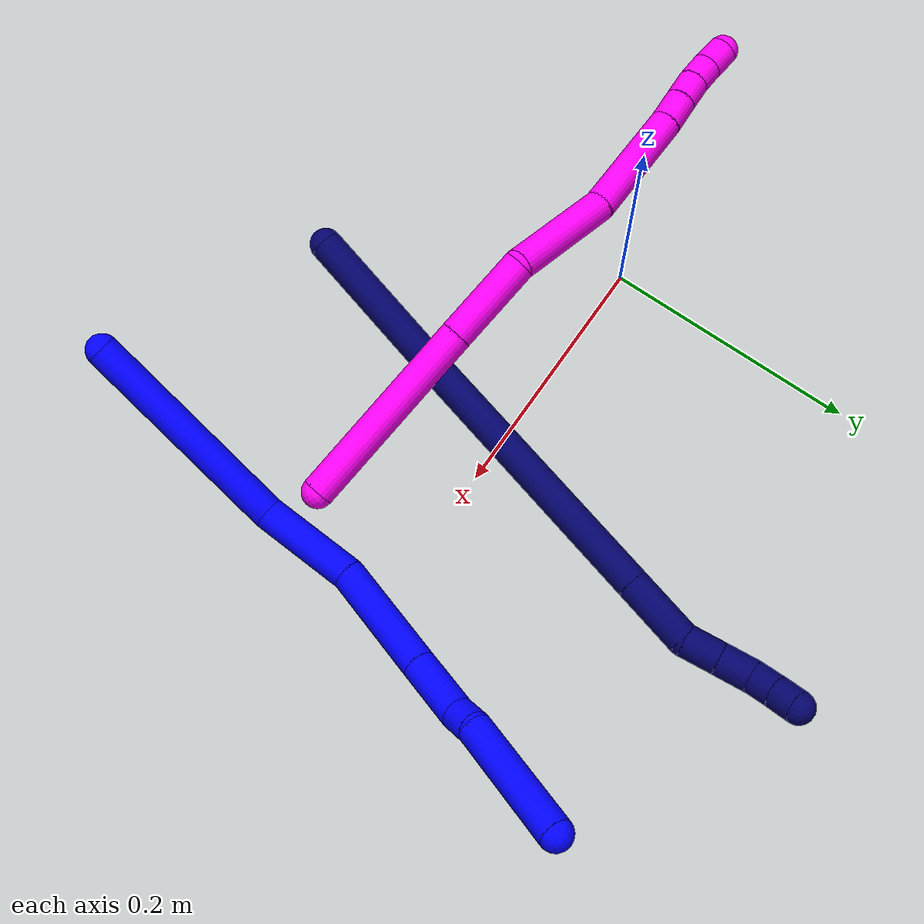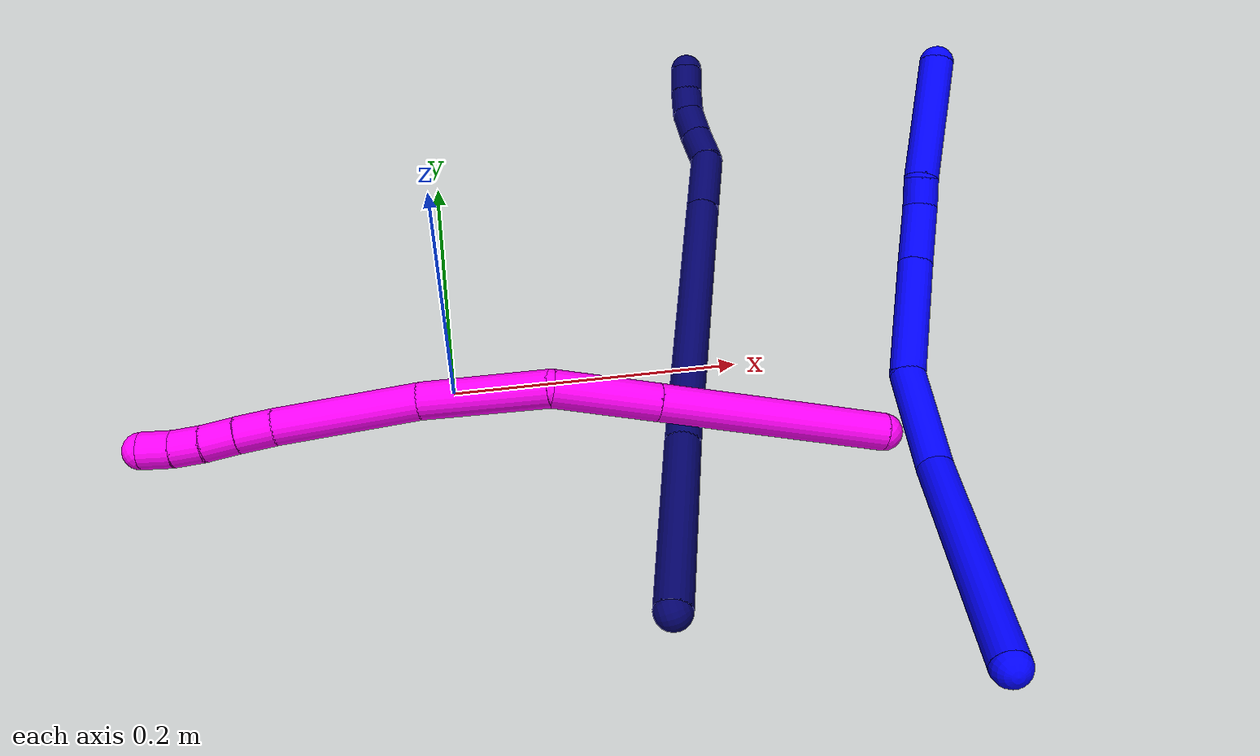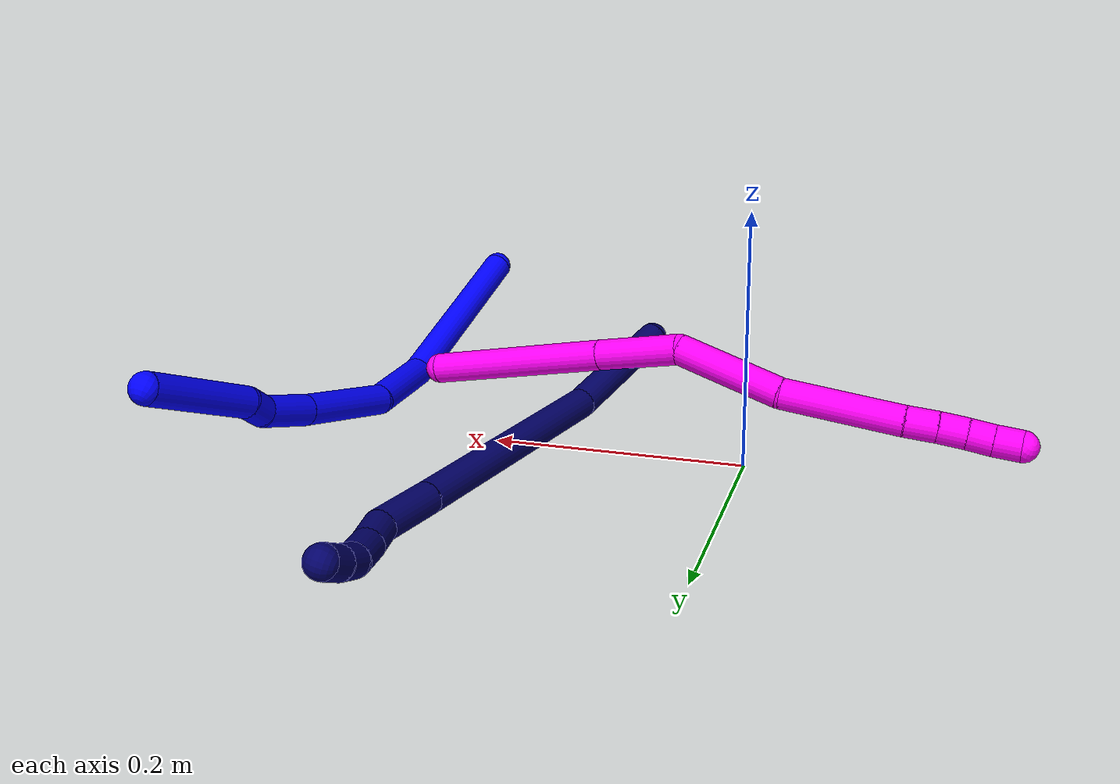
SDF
<sdf version="1.7">
 <world name="default">
  <model name="1">
   <static>0</static>
   <link name="1">
    <collision name="collision-cylinder-e_1_1_4">
     <pose>-0.00952 0.022188 0.081289 -0.266465 -0.112505 0.015094</pose>
     <geometry><cylinder><radius>0.0125</radius><length>0.169599</length></cylinder></geometry>
     <surface>
      <friction><ode><mu>1.16</mu><mu2>1.16</mu2><slip1>0</slip1><slip2>0</slip2></ode></friction>
      <contact><ode><kp>1e+06</kp><kd>1</kd><max_vel>0</max_vel><min_depth>0.001</min_depth></ode></contact>
     </surface>
    </collision>
    <visual name="visual-cylinder-e_1_1_4">
     <pose>-0.00952 0.022188 0.081289 -0.266465 -0.112505 0.015094</pose>
     <geometry><cylinder><radius>0.0125</radius><length>0.169599</length></cylinder></geometry>
     <material><ambient>0 0 1 1</ambient></material>
    </visual>
    <collision name="collision-cylinder-e_2_4_5">
     <pose>-0.023611 0.06646 0.193422 -0.621361 -0.119904 0.03854</pose>
     <geometry><cylinder><radius>0.0125</radius><length>0.076416</length></cylinder></geometry>
     <surface>
      <friction><ode><mu>1.16</mu><mu2>1.16</mu2><slip1>0</slip1><slip2>0</slip2></ode></friction>
      <contact><ode><kp>1e+06</kp><kd>1</kd><max_vel>0</max_vel><min_depth>0.001</min_depth></ode></contact>
     </surface>
    </collision>
    <visual name="visual-cylinder-e_2_4_5">
     <pose>-0.023611 0.06646 0.193422 -0.621361 -0.119904 0.03854</pose>
     <geometry><cylinder><radius>0.0125</radius><length>0.076416</length></cylinder></geometry>
     <material><ambient>0 0 1 1</ambient></material>
    </visual>
    <collision name="collision-cylinder-e_3_5_6">
     <pose>-0.045976 0.117167 0.253378 -0.77694 -0.41103 0.170218</pose>
     <geometry><cylinder><radius>0.0125</radius><length>0.089075</length></cylinder></geometry>
     <surface>
      <friction><ode><mu>1.16</mu><mu2>1.16</mu2><slip1>0</slip1><slip2>0</slip2></ode></friction>
      <contact><ode><kp>1e+06</kp><kd>1</kd><max_vel>0</max_vel><min_depth>0.001</min_depth></ode></contact>
     </surface>
    </collision>
    <visual name="visual-cylinder-e_3_5_6">
     <pose>-0.045976 0.117167 0.253378 -0.77694 -0.41103 0.170218</pose>
     <geometry><cylinder><radius>0.0125</radius><length>0.089075</length></cylinder></geometry>
     <material><ambient>0 0 1 1</ambient></material>
    </visual>
    <collision name="collision-cylinder-e_4_6_7">
     <pose>-0.073344 0.162064 0.296387 -0.86399 -0.420639 0.19621</pose>
     <geometry><cylinder><radius>0.0125</radius><length>0.046884</length></cylinder></geometry>
     <surface>
      <friction><ode><mu>1.16</mu><mu2>1.16</mu2><slip1>0</slip1><slip2>0</slip2></ode></friction>
      <contact><ode><kp>1e+06</kp><kd>1</kd><max_vel>0</max_vel><min_depth>0.001</min_depth></ode></contact>
     </surface>
    </collision>
    <visual name="visual-cylinder-e_4_6_7">
     <pose>-0.073344 0.162064 0.296387 -0.86399 -0.420639 0.19621</pose>
     <geometry><cylinder><radius>0.0125</radius><length>0.046884</length></cylinder></geometry>
     <material><ambient>0 0 1 1</ambient></material>
    </visual>
    <collision name="collision-cylinder-e_5_7_8">
     <pose>-0.086437 0.18806 0.313279 -1.27197 -0.333157 0.247014</pose>
     <geometry><cylinder><radius>0.0125</radius><length>0.021535</length></cylinder></geometry>
     <surface>
      <friction><ode><mu>1.16</mu><mu2>1.16</mu2><slip1>0</slip1><slip2>0</slip2></ode></friction>
      <contact><ode><kp>1e+06</kp><kd>1</kd><max_vel>0</max_vel><min_depth>0.001</min_depth></ode></contact>
     </surface>
    </collision>
    <visual name="visual-cylinder-e_5_7_8">
     <pose>-0.086437 0.18806 0.313279 -1.27197 -0.333157 0.247014</pose>
     <geometry><cylinder><radius>0.0125</radius><length>0.021535</length></cylinder></geometry>
     <material><ambient>0 0 1 1</ambient></material>
    </visual>
    <collision name="collision-cylinder-e_6_8_2">
     <pose>-0.111142 0.233928 0.340205 -0.985973 -0.45456 0.24723</pose>
     <geometry><cylinder><radius>0.0125</radius><length>0.096492</length></cylinder></geometry>
     <surface>
      <friction><ode><mu>1.16</mu><mu2>1.16</mu2><slip1>0</slip1><slip2>0</slip2></ode></friction>
      <contact><ode><kp>1e+06</kp><kd>1</kd><max_vel>0</max_vel><min_depth>0.001</min_depth></ode></contact>
     </surface>
    </collision>
    <visual name="visual-cylinder-e_6_8_2">
     <pose>-0.111142 0.233928 0.340205 -0.985973 -0.45456 0.24723</pose>
     <geometry><cylinder><radius>0.0125</radius><length>0.096492</length></cylinder></geometry>
     <material><ambient>0 0 1 1</ambient></material>
    </visual>
    <collision name="collision-sphere-2">
     <pose>-0.132325 0.270071 0.364134 0 -0 0</pose>
     <geometry><sphere><radius>0.0125</radius></sphere></geometry>
     <surface>
      <friction><ode><mu>1.16</mu><mu2>1.16</mu2><slip1>0</slip1><slip2>0</slip2></ode></friction>
      <contact><ode><kp>1e+06</kp><kd>1</kd><max_vel>0</max_vel><min_depth>0.001</min_depth></ode></contact>
     </surface>
    </collision>
    <visual name="visual-sphere-2">
     <pose>-0.132325 0.270071 0.364134 0 -0 0</pose>
     <geometry><sphere><radius>0.0125</radius></sphere></geometry>
     <material><ambient>0 0 1 1</ambient></material>
    </visual>
    <collision name="collision-sphere-4">
     <pose>-0.01904 0.044377 0.162579 0 -0 0</pose>
     <geometry><sphere><radius>0.0125</radius></sphere></geometry>
     <surface>
      <friction><ode><mu>1.16</mu><mu2>1.16</mu2><slip1>0</slip1><slip2>0</slip2></ode></friction>
      <contact><ode><kp>1e+06</kp><kd>1</kd><max_vel>0</max_vel><min_depth>0.001</min_depth></ode></contact>
     </surface>
    </collision>
    <visual name="visual-sphere-4">
     <pose>-0.01904 0.044377 0.162579 0 -0 0</pose>
     <geometry><sphere><radius>0.0125</radius></sphere></geometry>
     <material><ambient>0 0 1 1</ambient></material>
    </visual>
    <collision name="collision-sphere-1">
     <geometry><sphere><radius>0.0125</radius></sphere></geometry>
     <surface>
      <friction><ode><mu>1.16</mu><mu2>1.16</mu2><slip1>0</slip1><slip2>0</slip2></ode></friction>
      <contact><ode><kp>1e+06</kp><kd>1</kd><max_vel>0</max_vel><min_depth>0.001</min_depth></ode></contact>
     </surface>
    </collision>
    <visual name="visual-sphere-1">
     <geometry><sphere><radius>0.0125</radius></sphere></geometry>
     <material><ambient>0 0 1 1</ambient></material>
    </visual>
    <collision name="collision-sphere-8">
     <pose>-0.089959 0.197785 0.316275 0 -0 0</pose>
     <geometry><sphere><radius>0.0125</radius></sphere></geometry>
     <surface>
      <friction><ode><mu>1.16</mu><mu2>1.16</mu2><slip1>0</slip1><slip2>0</slip2></ode></friction>
      <contact><ode><kp>1e+06</kp><kd>1</kd><max_vel>0</max_vel><min_depth>0.001</min_depth></ode></contact>
     </surface>
    </collision>
    <visual name="visual-sphere-8">
     <pose>-0.089959 0.197785 0.316275 0 -0 0</pose>
     <geometry><sphere><radius>0.0125</radius></sphere></geometry>
     <material><ambient>0 0 1 1</ambient></material>
    </visual>
    <collision name="collision-sphere-5">
     <pose>-0.028181 0.088542 0.224265 0 -0 0</pose>
     <geometry><sphere><radius>0.0125</radius></sphere></geometry>
     <surface>
      <friction><ode><mu>1.16</mu><mu2>1.16</mu2><slip1>0</slip1><slip2>0</slip2></ode></friction>
      <contact><ode><kp>1e+06</kp><kd>1</kd><max_vel>0</max_vel><min_depth>0.001</min_depth></ode></contact>
     </surface>
    </collision>
    <visual name="visual-sphere-5">
     <pose>-0.028181 0.088542 0.224265 0 -0 0</pose>
     <geometry><sphere><radius>0.0125</radius></sphere></geometry>
     <material><ambient>0 0 1 1</ambient></material>
    </visual>
    <collision name="collision-sphere-6">
     <pose>-0.063771 0.145791 0.282491 0 -0 0</pose>
     <geometry><sphere><radius>0.0125</radius></sphere></geometry>
     <surface>
      <friction><ode><mu>1.16</mu><mu2>1.16</mu2><slip1>0</slip1><slip2>0</slip2></ode></friction>
      <contact><ode><kp>1e+06</kp><kd>1</kd><max_vel>0</max_vel><min_depth>0.001</min_depth></ode></contact>
     </surface>
    </collision>
    <visual name="visual-sphere-6">
     <pose>-0.063771 0.145791 0.282491 0 -0 0</pose>
     <geometry><sphere><radius>0.0125</radius></sphere></geometry>
     <material><ambient>0 0 1 1</ambient></material>
    </visual>
    <collision name="collision-sphere-7">
     <pose>-0.082916 0.178336 0.310284 0 -0 0</pose>
     <geometry><sphere><radius>0.0125</radius></sphere></geometry>
     <surface>
      <friction><ode><mu>1.16</mu><mu2>1.16</mu2><slip1>0</slip1><slip2>0</slip2></ode></friction>
      <contact><ode><kp>1e+06</kp><kd>1</kd><max_vel>0</max_vel><min_depth>0.001</min_depth></ode></contact>
     </surface>
    </collision>
    <visual name="visual-sphere-7">
     <pose>-0.082916 0.178336 0.310284 0 -0 0</pose>
     <geometry><sphere><radius>0.0125</radius></sphere></geometry>
     <material><ambient>0 0 1 1</ambient></material>
    </visual>
    <inertial>
     <pose>-0.047077 0.106997 0.209212 0 -0 0</pose>
     <mass>0.5</mass>
     <inertia>
      <ixx>0.000613</ixx>
      <ixy>0</ixy>
      <ixz>0</ixz>
      <iyy>0.000593</iyy>
      <iyz>0</iyz>
      <izz>-9.5e-05</izz>
     </inertia>
    </inertial>
   </link>
   <pose>0.290724 -0.267594 0.067416 2.21096 0.218971 -3.07177</pose>
  </model>
  <model name="7">
   <static>0</static>
   <link name="7">
    <collision name="collision-cylinder-e_1_1_4">
     <pose>-0.063172 -0.012827 0.016865 0.650252 -1.24717 -0.475776</pose>
     <geometry><cylinder><radius>0.0125</radius><length>0.133261</length></cylinder></geometry>
     <surface>
      <friction><ode><mu>1.16</mu><mu2>1.16</mu2><slip1>0</slip1><slip2>0</slip2></ode></friction>
      <contact><ode><kp>1e+06</kp><kd>1</kd><max_vel>0</max_vel><min_depth>0.001</min_depth></ode></contact>
     </surface>
    </collision>
    <visual name="visual-cylinder-e_1_1_4">
     <pose>-0.063172 -0.012827 0.016865 0.650252 -1.24717 -0.475776</pose>
     <geometry><cylinder><radius>0.0125</radius><length>0.133261</length></cylinder></geometry>
     <material><ambient>0.003922 0 0.403922 1</ambient></material>
    </visual>
    <collision name="collision-cylinder-e_2_4_5">
     <pose>-0.223278 -0.060158 0.067779 0.792019 -1.10709 -0.505702</pose>
     <geometry><cylinder><radius>0.0125</radius><length>0.21676</length></cylinder></geometry>
     <surface>
      <friction><ode><mu>1.16</mu><mu2>1.16</mu2><slip1>0</slip1><slip2>0</slip2></ode></friction>
      <contact><ode><kp>1e+06</kp><kd>1</kd><max_vel>0</max_vel><min_depth>0.001</min_depth></ode></contact>
     </surface>
    </collision>
    <visual name="visual-cylinder-e_2_4_5">
     <pose>-0.223278 -0.060158 0.067779 0.792019 -1.10709 -0.505702</pose>
     <geometry><cylinder><radius>0.0125</radius><length>0.21676</length></cylinder></geometry>
     <material><ambient>0.003922 0 0.403922 1</ambient></material>
    </visual>
    <collision name="collision-cylinder-e_3_5_6">
     <pose>-0.344503 -0.103604 0.110553 0.797757 -1.09569 -0.503411</pose>
     <geometry><cylinder><radius>0.0125</radius><length>0.054628</length></cylinder></geometry>
     <surface>
      <friction><ode><mu>1.16</mu><mu2>1.16</mu2><slip1>0</slip1><slip2>0</slip2></ode></friction>
      <contact><ode><kp>1e+06</kp><kd>1</kd><max_vel>0</max_vel><min_depth>0.001</min_depth></ode></contact>
     </surface>
    </collision>
    <visual name="visual-cylinder-e_3_5_6">
     <pose>-0.344503 -0.103604 0.110553 0.797757 -1.09569 -0.503411</pose>
     <geometry><cylinder><radius>0.0125</radius><length>0.054628</length></cylinder></geometry>
     <material><ambient>0.003922 0 0.403922 1</ambient></material>
    </visual>
    <collision name="collision-cylinder-e_4_6_7">
     <pose>-0.381541 -0.118492 0.118929 1.62938 -1.13382 -1.18756</pose>
     <geometry><cylinder><radius>0.0125</radius><length>0.028143</length></cylinder></geometry>
     <surface>
      <friction><ode><mu>1.16</mu><mu2>1.16</mu2><slip1>0</slip1><slip2>0</slip2></ode></friction>
      <contact><ode><kp>1e+06</kp><kd>1</kd><max_vel>0</max_vel><min_depth>0.001</min_depth></ode></contact>
     </surface>
    </collision>
    <visual name="visual-cylinder-e_4_6_7">
     <pose>-0.381541 -0.118492 0.118929 1.62938 -1.13382 -1.18756</pose>
     <geometry><cylinder><radius>0.0125</radius><length>0.028143</length></cylinder></geometry>
     <material><ambient>0.003922 0 0.403922 1</ambient></material>
    </visual>
    <collision name="collision-cylinder-e_5_7_8">
     <pose>-0.405992 -0.131061 0.118893 1.52365 -1.05525 -1.0147</pose>
     <geometry><cylinder><radius>0.0125</radius><length>0.026901</length></cylinder></geometry>
     <surface>
      <friction><ode><mu>1.16</mu><mu2>1.16</mu2><slip1>0</slip1><slip2>0</slip2></ode></friction>
      <contact><ode><kp>1e+06</kp><kd>1</kd><max_vel>0</max_vel><min_depth>0.001</min_depth></ode></contact>
     </surface>
    </collision>
    <visual name="visual-cylinder-e_5_7_8">
     <pose>-0.405992 -0.131061 0.118893 1.52365 -1.05525 -1.0147</pose>
     <geometry><cylinder><radius>0.0125</radius><length>0.026901</length></cylinder></geometry>
     <material><ambient>0.003922 0 0.403922 1</ambient></material>
    </visual>
    <collision name="collision-cylinder-e_6_8_9">
     <pose>-0.424891 -0.144298 0.121636 1.21859 -0.796047 -0.570837</pose>
     <geometry><cylinder><radius>0.0125</radius><length>0.020143</length></cylinder></geometry>
     <surface>
      <friction><ode><mu>1.16</mu><mu2>1.16</mu2><slip1>0</slip1><slip2>0</slip2></ode></friction>
      <contact><ode><kp>1e+06</kp><kd>1</kd><max_vel>0</max_vel><min_depth>0.001</min_depth></ode></contact>
     </surface>
    </collision>
    <visual name="visual-cylinder-e_6_8_9">
     <pose>-0.424891 -0.144298 0.121636 1.21859 -0.796047 -0.570837</pose>
     <geometry><cylinder><radius>0.0125</radius><length>0.020143</length></cylinder></geometry>
     <material><ambient>0.003922 0 0.403922 1</ambient></material>
    </visual>
    <collision name="collision-cylinder-e_7_9_2">
     <pose>-0.438291 -0.158173 0.127296 1.15242 -0.662644 -0.439811</pose>
     <geometry><cylinder><radius>0.0125</radius><length>0.020164</length></cylinder></geometry>
     <surface>
      <friction><ode><mu>1.16</mu><mu2>1.16</mu2><slip1>0</slip1><slip2>0</slip2></ode></friction>
      <contact><ode><kp>1e+06</kp><kd>1</kd><max_vel>0</max_vel><min_depth>0.001</min_depth></ode></contact>
     </surface>
    </collision>
    <visual name="visual-cylinder-e_7_9_2">
     <pose>-0.438291 -0.158173 0.127296 1.15242 -0.662644 -0.439811</pose>
     <geometry><cylinder><radius>0.0125</radius><length>0.020164</length></cylinder></geometry>
     <material><ambient>0.003922 0 0.403922 1</ambient></material>
    </visual>
    <collision name="collision-sphere-2">
     <pose>-0.444493 -0.165436 0.130525 0 -0 0</pose>
     <geometry><sphere><radius>0.0125</radius></sphere></geometry>
     <surface>
      <friction><ode><mu>1.16</mu><mu2>1.16</mu2><slip1>0</slip1><slip2>0</slip2></ode></friction>
      <contact><ode><kp>1e+06</kp><kd>1</kd><max_vel>0</max_vel><min_depth>0.001</min_depth></ode></contact>
     </surface>
    </collision>
    <visual name="visual-sphere-2">
     <pose>-0.444493 -0.165436 0.130525 0 -0 0</pose>
     <geometry><sphere><radius>0.0125</radius></sphere></geometry>
     <material><ambient>0.003922 0 0.403922 1</ambient></material>
    </visual>
    <collision name="collision-sphere-9">
     <pose>-0.432089 -0.150911 0.124067 0 -0 0</pose>
     <geometry><sphere><radius>0.0125</radius></sphere></geometry>
     <surface>
      <friction><ode><mu>1.16</mu><mu2>1.16</mu2><slip1>0</slip1><slip2>0</slip2></ode></friction>
      <contact><ode><kp>1e+06</kp><kd>1</kd><max_vel>0</max_vel><min_depth>0.001</min_depth></ode></contact>
     </surface>
    </collision>
    <visual name="visual-sphere-9">
     <pose>-0.432089 -0.150911 0.124067 0 -0 0</pose>
     <geometry><sphere><radius>0.0125</radius></sphere></geometry>
     <material><ambient>0.003922 0 0.403922 1</ambient></material>
    </visual>
    <collision name="collision-sphere-4">
     <pose>-0.126343 -0.025655 0.03373 0 -0 0</pose>
     <geometry><sphere><radius>0.0125</radius></sphere></geometry>
     <surface>
      <friction><ode><mu>1.16</mu><mu2>1.16</mu2><slip1>0</slip1><slip2>0</slip2></ode></friction>
      <contact><ode><kp>1e+06</kp><kd>1</kd><max_vel>0</max_vel><min_depth>0.001</min_depth></ode></contact>
     </surface>
    </collision>
    <visual name="visual-sphere-4">
     <pose>-0.126343 -0.025655 0.03373 0 -0 0</pose>
     <geometry><sphere><radius>0.0125</radius></sphere></geometry>
     <material><ambient>0.003922 0 0.403922 1</ambient></material>
    </visual>
    <collision name="collision-sphere-1">
     <geometry><sphere><radius>0.0125</radius></sphere></geometry>
     <surface>
      <friction><ode><mu>1.16</mu><mu2>1.16</mu2><slip1>0</slip1><slip2>0</slip2></ode></friction>
      <contact><ode><kp>1e+06</kp><kd>1</kd><max_vel>0</max_vel><min_depth>0.001</min_depth></ode></contact>
     </surface>
    </collision>
    <visual name="visual-sphere-1">
     <geometry><sphere><radius>0.0125</radius></sphere></geometry>
     <material><ambient>0.003922 0 0.403922 1</ambient></material>
    </visual>
    <collision name="collision-sphere-8">
     <pose>-0.417694 -0.137685 0.119206 0 -0 0</pose>
     <geometry><sphere><radius>0.0125</radius></sphere></geometry>
     <surface>
      <friction><ode><mu>1.16</mu><mu2>1.16</mu2><slip1>0</slip1><slip2>0</slip2></ode></friction>
      <contact><ode><kp>1e+06</kp><kd>1</kd><max_vel>0</max_vel><min_depth>0.001</min_depth></ode></contact>
     </surface>
    </collision>
    <visual name="visual-sphere-8">
     <pose>-0.417694 -0.137685 0.119206 0 -0 0</pose>
     <geometry><sphere><radius>0.0125</radius></sphere></geometry>
     <material><ambient>0.003922 0 0.403922 1</ambient></material>
    </visual>
    <collision name="collision-sphere-5">
     <pose>-0.320214 -0.094661 0.101828 0 -0 0</pose>
     <geometry><sphere><radius>0.0125</radius></sphere></geometry>
     <surface>
      <friction><ode><mu>1.16</mu><mu2>1.16</mu2><slip1>0</slip1><slip2>0</slip2></ode></friction>
      <contact><ode><kp>1e+06</kp><kd>1</kd><max_vel>0</max_vel><min_depth>0.001</min_depth></ode></contact>
     </surface>
    </collision>
    <visual name="visual-sphere-5">
     <pose>-0.320214 -0.094661 0.101828 0 -0 0</pose>
     <geometry><sphere><radius>0.0125</radius></sphere></geometry>
     <material><ambient>0.003922 0 0.403922 1</ambient></material>
    </visual>
    <collision name="collision-sphere-6">
     <pose>-0.368792 -0.112548 0.119278 0 -0 0</pose>
     <geometry><sphere><radius>0.0125</radius></sphere></geometry>
     <surface>
      <friction><ode><mu>1.16</mu><mu2>1.16</mu2><slip1>0</slip1><slip2>0</slip2></ode></friction>
      <contact><ode><kp>1e+06</kp><kd>1</kd><max_vel>0</max_vel><min_depth>0.001</min_depth></ode></contact>
     </surface>
    </collision>
    <visual name="visual-sphere-6">
     <pose>-0.368792 -0.112548 0.119278 0 -0 0</pose>
     <geometry><sphere><radius>0.0125</radius></sphere></geometry>
     <material><ambient>0.003922 0 0.403922 1</ambient></material>
    </visual>
    <collision name="collision-sphere-7">
     <pose>-0.39429 -0.124437 0.118581 0 -0 0</pose>
     <geometry><sphere><radius>0.0125</radius></sphere></geometry>
     <surface>
      <friction><ode><mu>1.16</mu><mu2>1.16</mu2><slip1>0</slip1><slip2>0</slip2></ode></friction>
      <contact><ode><kp>1e+06</kp><kd>1</kd><max_vel>0</max_vel><min_depth>0.001</min_depth></ode></contact>
     </surface>
    </collision>
    <visual name="visual-sphere-7">
     <pose>-0.39429 -0.124437 0.118581 0 -0 0</pose>
     <geometry><sphere><radius>0.0125</radius></sphere></geometry>
     <material><ambient>0.003922 0 0.403922 1</ambient></material>
    </visual>
    <inertial>
     <pose>-0.229382 -0.066731 0.069082 0 -0 0</pose>
     <mass>0.5</mass>
     <inertia>
      <ixx>0.000145</ixx>
      <ixy>0</ixy>
      <ixz>0</ixz>
      <iyy>0.000773</iyy>
      <iyz>0</iyz>
      <izz>0.001311</izz>
     </inertia>
    </inertial>
   </link>
   <pose>0.118826 -0.196451 0.032636 -1.25352 -0.424956 -1.62173</pose>
  </model>
  <model name="10">
   <static>0</static>
   <link name="10">
    <collision name="collision-cylinder-e_1_1_4">
     <pose>-0.049077 0.012316 0.057891 -0.209616 -0.692289 0.075843</pose>
     <geometry><cylinder><radius>0.0125</radius><length>0.153774</length></cylinder></geometry>
     <surface>
      <friction><ode><mu>1.16</mu><mu2>1.16</mu2><slip1>0</slip1><slip2>0</slip2></ode></friction>
      <contact><ode><kp>1e+06</kp><kd>1</kd><max_vel>0</max_vel><min_depth>0.001</min_depth></ode></contact>
     </surface>
    </collision>
    <visual name="visual-cylinder-e_1_1_4">
     <pose>-0.049077 0.012316 0.057891 -0.209616 -0.692289 0.075843</pose>
     <geometry><cylinder><radius>0.0125</radius><length>0.153774</length></cylinder></geometry>
     <material><ambient>1 0 0.964706 1</ambient></material>
    </visual>
    <collision name="collision-cylinder-e_2_4_5">
     <pose>-0.120501 0.030598 0.142103 -0.222918 -0.691593 0.080602</pose>
     <geometry><cylinder><radius>0.0125</radius><length>0.07008</length></cylinder></geometry>
     <surface>
      <friction><ode><mu>1.16</mu><mu2>1.16</mu2><slip1>0</slip1><slip2>0</slip2></ode></friction>
      <contact><ode><kp>1e+06</kp><kd>1</kd><max_vel>0</max_vel><min_depth>0.001</min_depth></ode></contact>
     </surface>
    </collision>
    <visual name="visual-cylinder-e_2_4_5">
     <pose>-0.120501 0.030598 0.142103 -0.222918 -0.691593 0.080602</pose>
     <geometry><cylinder><radius>0.0125</radius><length>0.07008</length></cylinder></geometry>
     <material><ambient>1 0 0.964706 1</ambient></material>
    </visual>
    <collision name="collision-cylinder-e_3_5_6">
     <pose>-0.173516 0.060797 0.189911 -0.845363 -0.758152 0.35458</pose>
     <geometry><cylinder><radius>0.0125</radius><length>0.089206</length></cylinder></geometry>
     <surface>
      <friction><ode><mu>1.16</mu><mu2>1.16</mu2><slip1>0</slip1><slip2>0</slip2></ode></friction>
      <contact><ode><kp>1e+06</kp><kd>1</kd><max_vel>0</max_vel><min_depth>0.001</min_depth></ode></contact>
     </surface>
    </collision>
    <visual name="visual-cylinder-e_3_5_6">
     <pose>-0.173516 0.060797 0.189911 -0.845363 -0.758152 0.35458</pose>
     <geometry><cylinder><radius>0.0125</radius><length>0.089206</length></cylinder></geometry>
     <material><ambient>1 0 0.964706 1</ambient></material>
    </visual>
    <collision name="collision-cylinder-e_4_6_7">
     <pose>-0.243084 0.101833 0.234861 -0.621511 -0.932503 0.320483</pose>
     <geometry><cylinder><radius>0.0125</radius><length>0.096873</length></cylinder></geometry>
     <surface>
      <friction><ode><mu>1.16</mu><mu2>1.16</mu2><slip1>0</slip1><slip2>0</slip2></ode></friction>
      <contact><ode><kp>1e+06</kp><kd>1</kd><max_vel>0</max_vel><min_depth>0.001</min_depth></ode></contact>
     </surface>
    </collision>
    <visual name="visual-cylinder-e_4_6_7">
     <pose>-0.243084 0.101833 0.234861 -0.621511 -0.932503 0.320483</pose>
     <geometry><cylinder><radius>0.0125</radius><length>0.096873</length></cylinder></geometry>
     <material><ambient>1 0 0.964706 1</ambient></material>
    </visual>
    <collision name="collision-cylinder-e_5_7_8">
     <pose>-0.292515 0.122313 0.264124 -0.564917 -0.992936 0.311884</pose>
     <geometry><cylinder><radius>0.0125</radius><length>0.025145</length></cylinder></geometry>
     <surface>
      <friction><ode><mu>1.16</mu><mu2>1.16</mu2><slip1>0</slip1><slip2>0</slip2></ode></friction>
      <contact><ode><kp>1e+06</kp><kd>1</kd><max_vel>0</max_vel><min_depth>0.001</min_depth></ode></contact>
     </surface>
    </collision>
    <visual name="visual-cylinder-e_5_7_8">
     <pose>-0.292515 0.122313 0.264124 -0.564917 -0.992936 0.311884</pose>
     <geometry><cylinder><radius>0.0125</radius><length>0.025145</length></cylinder></geometry>
     <material><ambient>1 0 0.964706 1</ambient></material>
    </visual>
    <collision name="collision-cylinder-e_6_8_9">
     <pose>-0.312671 0.129636 0.274814 -0.640825 -1.00596 0.361174</pose>
     <geometry><cylinder><radius>0.0125</radius><length>0.022788</length></cylinder></geometry>
     <surface>
      <friction><ode><mu>1.16</mu><mu2>1.16</mu2><slip1>0</slip1><slip2>0</slip2></ode></friction>
      <contact><ode><kp>1e+06</kp><kd>1</kd><max_vel>0</max_vel><min_depth>0.001</min_depth></ode></contact>
     </surface>
    </collision>
    <visual name="visual-cylinder-e_6_8_9">
     <pose>-0.312671 0.129636 0.274814 -0.640825 -1.00596 0.361174</pose>
     <geometry><cylinder><radius>0.0125</radius><length>0.022788</length></cylinder></geometry>
     <material><ambient>1 0 0.964706 1</ambient></material>
    </visual>
    <collision name="collision-cylinder-e_7_9_10">
     <pose>-0.330455 0.137183 0.284628 -0.669868 -0.914675 0.339281</pose>
     <geometry><cylinder><radius>0.0125</radius><length>0.020597</length></cylinder></geometry>
     <surface>
      <friction><ode><mu>1.16</mu><mu2>1.16</mu2><slip1>0</slip1><slip2>0</slip2></ode></friction>
      <contact><ode><kp>1e+06</kp><kd>1</kd><max_vel>0</max_vel><min_depth>0.001</min_depth></ode></contact>
     </surface>
    </collision>
    <visual name="visual-cylinder-e_7_9_10">
     <pose>-0.330455 0.137183 0.284628 -0.669868 -0.914675 0.339281</pose>
     <geometry><cylinder><radius>0.0125</radius><length>0.020597</length></cylinder></geometry>
     <material><ambient>1 0 0.964706 1</ambient></material>
    </visual>
    <collision name="collision-cylinder-e_8_10_2">
     <pose>-0.346485 0.144959 0.295799 -0.555382 -0.819477 0.246358</pose>
     <geometry><cylinder><radius>0.0125</radius><length>0.021539</length></cylinder></geometry>
     <surface>
      <friction><ode><mu>1.16</mu><mu2>1.16</mu2><slip1>0</slip1><slip2>0</slip2></ode></friction>
      <contact><ode><kp>1e+06</kp><kd>1</kd><max_vel>0</max_vel><min_depth>0.001</min_depth></ode></contact>
     </surface>
    </collision>
    <visual name="visual-cylinder-e_8_10_2">
     <pose>-0.346485 0.144959 0.295799 -0.555382 -0.819477 0.246358</pose>
     <geometry><cylinder><radius>0.0125</radius><length>0.021539</length></cylinder></geometry>
     <material><ambient>1 0 0.964706 1</ambient></material>
    </visual>
    <collision name="collision-sphere-2">
     <pose>-0.354355 0.148836 0.302045 0 -0 0</pose>
     <geometry><sphere><radius>0.0125</radius></sphere></geometry>
     <surface>
      <friction><ode><mu>1.16</mu><mu2>1.16</mu2><slip1>0</slip1><slip2>0</slip2></ode></friction>
      <contact><ode><kp>1e+06</kp><kd>1</kd><max_vel>0</max_vel><min_depth>0.001</min_depth></ode></contact>
     </surface>
    </collision>
    <visual name="visual-sphere-2">
     <pose>-0.354355 0.148836 0.302045 0 -0 0</pose>
     <geometry><sphere><radius>0.0125</radius></sphere></geometry>
     <material><ambient>1 0 0.964706 1</ambient></material>
    </visual>
    <collision name="collision-sphere-10">
     <pose>-0.338615 0.141083 0.289552 0 -0 0</pose>
     <geometry><sphere><radius>0.0125</radius></sphere></geometry>
     <surface>
      <friction><ode><mu>1.16</mu><mu2>1.16</mu2><slip1>0</slip1><slip2>0</slip2></ode></friction>
      <contact><ode><kp>1e+06</kp><kd>1</kd><max_vel>0</max_vel><min_depth>0.001</min_depth></ode></contact>
     </surface>
    </collision>
    <visual name="visual-sphere-10">
     <pose>-0.338615 0.141083 0.289552 0 -0 0</pose>
     <geometry><sphere><radius>0.0125</radius></sphere></geometry>
     <material><ambient>1 0 0.964706 1</ambient></material>
    </visual>
    <collision name="collision-sphere-9">
     <pose>-0.322295 0.133282 0.279703 0 -0 0</pose>
     <geometry><sphere><radius>0.0125</radius></sphere></geometry>
     <surface>
      <friction><ode><mu>1.16</mu><mu2>1.16</mu2><slip1>0</slip1><slip2>0</slip2></ode></friction>
      <contact><ode><kp>1e+06</kp><kd>1</kd><max_vel>0</max_vel><min_depth>0.001</min_depth></ode></contact>
     </surface>
    </collision>
    <visual name="visual-sphere-9">
     <pose>-0.322295 0.133282 0.279703 0 -0 0</pose>
     <geometry><sphere><radius>0.0125</radius></sphere></geometry>
     <material><ambient>1 0 0.964706 1</ambient></material>
    </visual>
    <collision name="collision-sphere-4">
     <pose>-0.098154 0.024632 0.115782 0 -0 0</pose>
     <geometry><sphere><radius>0.0125</radius></sphere></geometry>
     <surface>
      <friction><ode><mu>1.16</mu><mu2>1.16</mu2><slip1>0</slip1><slip2>0</slip2></ode></friction>
      <contact><ode><kp>1e+06</kp><kd>1</kd><max_vel>0</max_vel><min_depth>0.001</min_depth></ode></contact>
     </surface>
    </collision>
    <visual name="visual-sphere-4">
     <pose>-0.098154 0.024632 0.115782 0 -0 0</pose>
     <geometry><sphere><radius>0.0125</radius></sphere></geometry>
     <material><ambient>1 0 0.964706 1</ambient></material>
    </visual>
    <collision name="collision-sphere-1">
     <geometry><sphere><radius>0.0125</radius></sphere></geometry>
     <surface>
      <friction><ode><mu>1.16</mu><mu2>1.16</mu2><slip1>0</slip1><slip2>0</slip2></ode></friction>
      <contact><ode><kp>1e+06</kp><kd>1</kd><max_vel>0</max_vel><min_depth>0.001</min_depth></ode></contact>
     </surface>
    </collision>
    <visual name="visual-sphere-1">
     <geometry><sphere><radius>0.0125</radius></sphere></geometry>
     <material><ambient>1 0 0.964706 1</ambient></material>
    </visual>
    <collision name="collision-sphere-8">
     <pose>-0.303046 0.125989 0.269925 0 -0 0</pose>
     <geometry><sphere><radius>0.0125</radius></sphere></geometry>
     <surface>
      <friction><ode><mu>1.16</mu><mu2>1.16</mu2><slip1>0</slip1><slip2>0</slip2></ode></friction>
      <contact><ode><kp>1e+06</kp><kd>1</kd><max_vel>0</max_vel><min_depth>0.001</min_depth></ode></contact>
     </surface>
    </collision>
    <visual name="visual-sphere-8">
     <pose>-0.303046 0.125989 0.269925 0 -0 0</pose>
     <geometry><sphere><radius>0.0125</radius></sphere></geometry>
     <material><ambient>1 0 0.964706 1</ambient></material>
    </visual>
    <collision name="collision-sphere-5">
     <pose>-0.142848 0.036565 0.168424 0 -0 0</pose>
     <geometry><sphere><radius>0.0125</radius></sphere></geometry>
     <surface>
      <friction><ode><mu>1.16</mu><mu2>1.16</mu2><slip1>0</slip1><slip2>0</slip2></ode></friction>
      <contact><ode><kp>1e+06</kp><kd>1</kd><max_vel>0</max_vel><min_depth>0.001</min_depth></ode></contact>
     </surface>
    </collision>
    <visual name="visual-sphere-5">
     <pose>-0.142848 0.036565 0.168424 0 -0 0</pose>
     <geometry><sphere><radius>0.0125</radius></sphere></geometry>
     <material><ambient>1 0 0.964706 1</ambient></material>
    </visual>
    <collision name="collision-sphere-6">
     <pose>-0.204184 0.085029 0.211398 0 -0 0</pose>
     <geometry><sphere><radius>0.0125</radius></sphere></geometry>
     <surface>
      <friction><ode><mu>1.16</mu><mu2>1.16</mu2><slip1>0</slip1><slip2>0</slip2></ode></friction>
      <contact><ode><kp>1e+06</kp><kd>1</kd><max_vel>0</max_vel><min_depth>0.001</min_depth></ode></contact>
     </surface>
    </collision>
    <visual name="visual-sphere-6">
     <pose>-0.204184 0.085029 0.211398 0 -0 0</pose>
     <geometry><sphere><radius>0.0125</radius></sphere></geometry>
     <material><ambient>1 0 0.964706 1</ambient></material>
    </visual>
    <collision name="collision-sphere-7">
     <pose>-0.281984 0.118637 0.258324 0 -0 0</pose>
     <geometry><sphere><radius>0.0125</radius></sphere></geometry>
     <surface>
      <friction><ode><mu>1.16</mu><mu2>1.16</mu2><slip1>0</slip1><slip2>0</slip2></ode></friction>
      <contact><ode><kp>1e+06</kp><kd>1</kd><max_vel>0</max_vel><min_depth>0.001</min_depth></ode></contact>
     </surface>
    </collision>
    <visual name="visual-sphere-7">
     <pose>-0.281984 0.118637 0.258324 0 -0 0</pose>
     <geometry><sphere><radius>0.0125</radius></sphere></geometry>
     <material><ambient>1 0 0.964706 1</ambient></material>
    </visual>
    <inertial>
     <pose>-0.167536 0.062608 0.167381 0 -0 0</pose>
     <mass>0.5</mass>
     <inertia>
      <ixx>0.000377</ixx>
      <ixy>0</ixy>
      <ixz>0</ixz>
      <iyy>0.000529</iyy>
      <iyz>0</iyz>
      <izz>0.000235</izz>
     </inertia>
    </inertial>
   </link>
   <pose>0.280342 -0.084803 0.025607 -0.879739 -0.219682 0.636197</pose>
  </model>
 </world>
</sdf>
